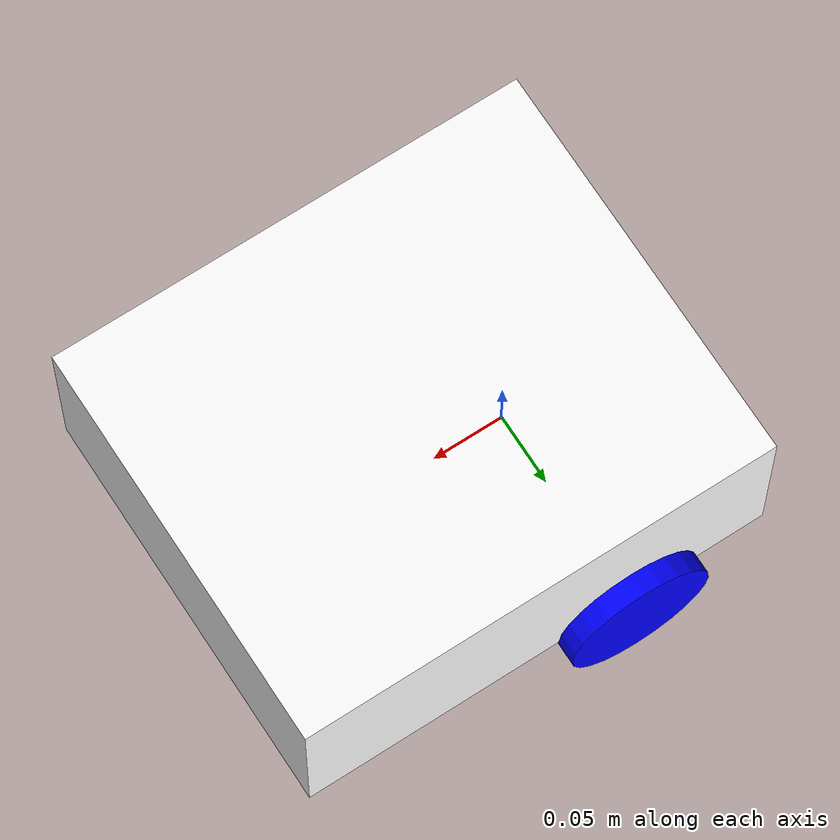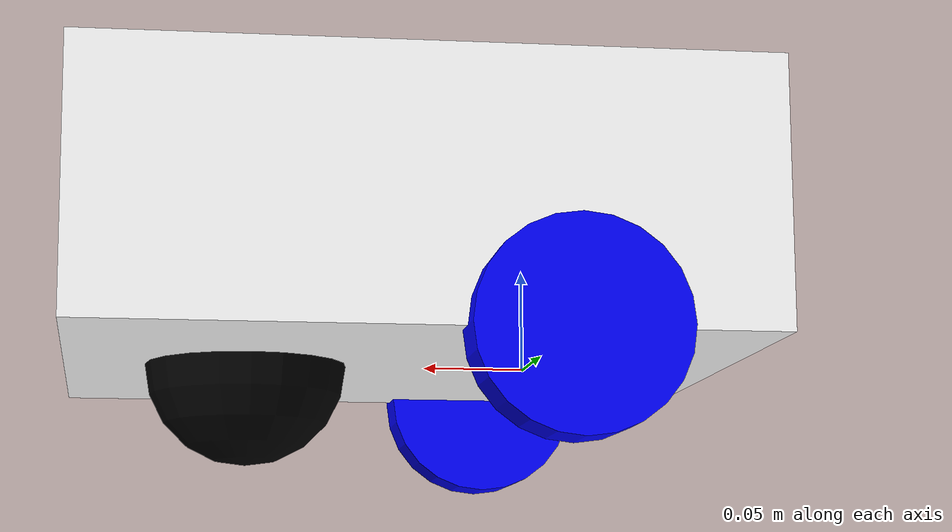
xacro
<?xml version="1.0"?>
<robot xmlns:xacro="http://www.ros.org/wiki/xacro" >

    <xacro:include filename="inertial_macros.xacro"/>
    <material name="white">
        <color rgba="1.0 1.0 1.0 1.0"/>
    </material>

    <material name="black">
        <color rgba="0.0 0.0 0.0 1.0"/>
    </material>

    <material name="orange">
        <color rgba="1.0 0.5 0.0 1.0"/>
    </material>

     <material name="blue">
        <color rgba="0.0 0.0 1.0 1.0"/>
     </material>

    <!-- Base link -->
    <link name="base_link">

    </link>

    <!-- Chassis joint -->
    <joint name="chassis_joint" type="fixed">
        <parent link="base_link"/>
        <child link="chassis"/>
        <origin xyz="-0.1 0 0"/>
    </joint>

    <link name="chassis">
        <visual>
            <origin xyz="0.165 0 0.065" rpy="0 0 0"/>
            <geometry>
                <box size="0.33 0.28 0.13"/>
            </geometry>
            <material name="white"/>
        </visual>
        <collision>
            <origin xyz="0.165 0 0.065" rpy="0 0 0"/>
            <geometry>
                <box size="0.33 0.28 0.13"/>
            </geometry>
        </collision>
        <xacro:inertial_box mass="3.6" x="0.33" y="0.28" z="0.13">
            <origin xyz="0.165 0 0.065" rpy="0 0 0"/>
        </xacro:inertial_box>
    </link>

    <gazebo reference="chassis">
        <material>Gazebo/White</material>
    </gazebo>

    <!-- Wheel joints -->

    <!-- LEFT -->
    <joint name="left_wheel_joint" type="continuous">
        <parent link="base_link"/>
        <child link="left_wheel"/>
        <origin xyz="0 0.14 0" rpy="-${pi/2} 0 0"/>
        <axis xyz="0 0 1"/>
    </joint>

    <link name="left_wheel">
        <visual>
            <geometry>
                <cylinder length="0.03" radius="0.05"/>
            </geometry>
            <material name="blue"/>
        </visual>
        <collision>
            <geometry>
                <cylinder length="0.03" radius="0.05"/>
            </geometry>
        </collision>
        <xacro:inertial_cylinder mass="0.1" length="0.03" radius="0.05">
            <origin xyz="0 0 0" rpy="0 0 0"/>
        </xacro:inertial_cylinder>
    </link>

    <gazebo reference="left_wheel">
        <material>Gazebo/Blue</material>
    </gazebo>

    <!-- RIGHT -->
    <joint name="right_wheel_joint" type="continuous">
        <parent link="base_link"/>
        <child link="right_wheel"/>
        <origin xyz="0 -0.14 0" rpy="${pi/2} 0 0"/>
        <axis xyz="0 0 -1"/>
    </joint>

    <link name="right_wheel">
        <visual>
            <geometry>
                <cylinder length="0.03" radius="0.05"/>
            </geometry>
            <material name="blue"/>
        </visual>
        <collision>
            <geometry>
                <cylinder length="0.03" radius="0.05"/>
            </geometry>
        </collision>
        <xacro:inertial_cylinder mass="0.1" length="0.03" radius="0.05">
            <origin xyz="0 0 0" rpy="0 0 0"/>
        </xacro:inertial_cylinder>
    </link>

    <gazebo reference="right_wheel">
        <material>Gazebo/Blue</material>
    </gazebo>

    <!-- CASTER WHEEL LINK -->

    <joint name="caster_wheel_joint" type="fixed">
        <parent  link="chassis"/>
        <child link="caster_wheel"/>
        <origin xyz="0.24 0.0 0.0" rpy="0 0 0"/>
    </joint>

    <link name="caster_wheel">
        <visual>
            <geometry>
                <sphere radius="0.05"/>
            </geometry>
            <material name="black"/>
        </visual>
        <collision>
            <geometry>
                <sphere radius="0.05"/>
            </geometry>
        </collision>
        <xacro:inertial_sphere mass="0.1" radius="0.05">
            <origin xyz="0 0 0" rpy="0 0 0"/>
        </xacro:inertial_sphere>
    </link>

    <gazebo reference="caster_wheel">
        <material>Gazebo/Black</material>
        <mu1>0.001</mu1>
        <mu2>0.001</mu2>
    </gazebo>

</robot>
